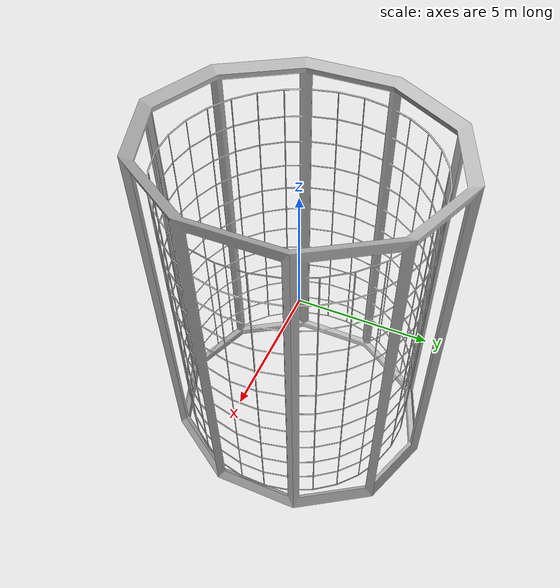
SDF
<sdf version="1.5">
  <model name="fishing_net_cilindro">
    <link name="fishing_net_link">
      <static>false</static>
      <collision name="fishing_net_cilindro">
        <pose>0 0 0 0 0 0</pose>
        <geometry>
          <mesh>
            <uri>model://fishing_net_cilindro/meshes/fishing_net_cilindro.dae</uri>
            <scale>0.5 0.5 0.5</scale>
          </mesh>
        </geometry>
      </collision>

      <visual name="fishing_net_cilindro">
        <pose>0 0 0 0 0 0</pose>
        <cast_shadows>false</cast_shadows>
        <geometry>
          <mesh>
            <uri>model://fishing_net_cilindro/meshes/fishing_net_cilindro.dae</uri>
            <scale>0.5 0.5 0.5</scale>
          </mesh>
        </geometry>
      </visual>
      <kinematic>1</kinematic>
     </link>
  </model>
</sdf>
